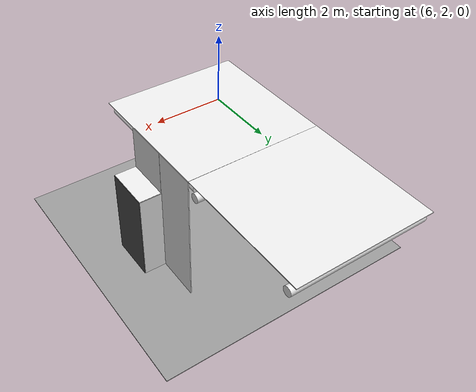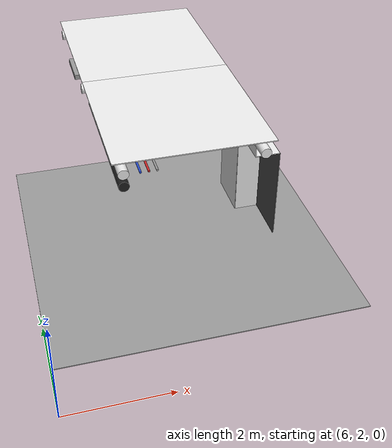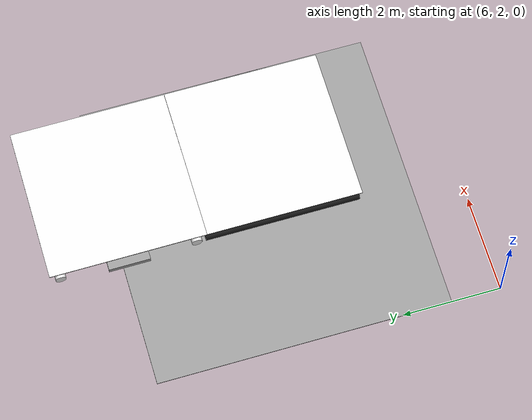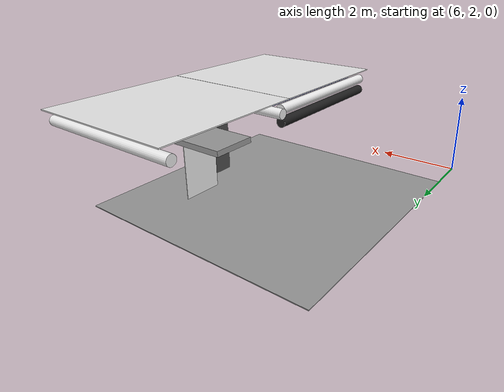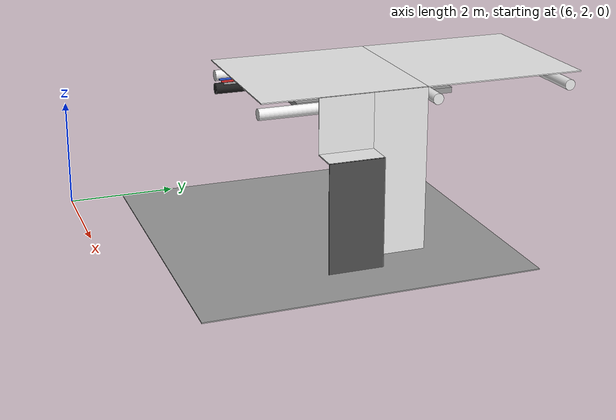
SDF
<sdf version="1.6">
 <world name="default">
  <model name="wall_top_3_3_0_2">
   <static>1</static>
   <pose>9.0 9.0 3.0 1.57 0.0 -1.57</pose>
   <link name="link">
    <collision name="collision"><geometry><box><size>3.0 0.02 3.0</size></box></geometry></collision>
    <visual name="visual">
     <material>
      <script><name>Gazebo/White</name><uri>file://media/materials/scripts/gazebo.material</uri></script>
     </material>
     <geometry><box><size>3.0 0.02 3.0</size></box></geometry>
    </visual>
   </link>
  </model>
  <model name="ceiling_1_3_3_0_2">
   <pose>8.0 9.0 2.55 0.0 0.0 -1.57</pose>
   <link name="link_1">
    <visual name="visual">
     <geometry><box><size>0.8 1 0.1</size></box></geometry>
     <material>
      <script><uri>file://media/materials/scripts/gazebo.material</uri><name>Gazebo/Grey</name></script>
     </material>
    </visual>
    <collision name="collision"><geometry><box><size>0.8 1 0.1</size></box></geometry></collision>
   </link>
   <static>1</static>
  </model>
  <model name="ceiling_1_3_3_1_2">
   <pose>9.0 8.0 2.55 0.0 0.0 0.0</pose>
   <link name="link_1">
    <visual name="visual">
     <geometry><box><size>0.8 1 0.1</size></box></geometry>
     <material>
      <script><uri>file://media/materials/scripts/gazebo.material</uri><name>Gazebo/Grey</name></script>
     </material>
    </visual>
    <collision name="collision"><geometry><box><size>0.8 1 0.1</size></box></geometry></collision>
   </link>
   <static>1</static>
  </model>
  <model name="white_pipe_left_3_3_0_2">
   <static>1</static>
   <pose>9.0 9.0 2.76 0.0 0.0 -1.57</pose>
   <link name="link_0">
    <visual name="visual">
     <pose>-1.3 0 0 1.57 0 0</pose>
     <geometry><cylinder><radius>0.1</radius><length>3.0</length></cylinder></geometry>
     <material>
      <script><uri>file://media/materials/scripts/gazebo.material</uri><name>Gazebo/White</name></script>
     </material>
    </visual>
    <collision name="collision">
     <pose>-1.3 0 0 1.57 0 0</pose>
     <geometry><cylinder><radius>0.1</radius><length>3.0</length></cylinder></geometry>
    </collision>
   </link>
  </model>
  <model name="white_pipe_right_3_3_0_2">
   <static>1</static>
   <pose>9.0 9.0 2.76 0.0 0.0 -1.57</pose>
   <link name="link_0">
    <visual name="visual">
     <pose>1.3 0 0 1.57 0 0</pose>
     <geometry><cylinder><radius>0.1</radius><length>3.0</length></cylinder></geometry>
     <material>
      <script><uri>file://media/materials/scripts/gazebo.material</uri><name>Gazebo/White</name></script>
     </material>
    </visual>
    <collision name="collision">
     <pose>1.3 0 0 1.57 0 0</pose>
     <geometry><cylinder><radius>0.1</radius><length>3.0</length></cylinder></geometry>
    </collision>
   </link>
  </model>
  <model name="wall_top_3_2_0_1">
   <static>1</static>
   <pose>9.0 6.0 3.0 1.57 0.0 3.14</pose>
   <link name="link">
    <collision name="collision"><geometry><box><size>3.0 0.02 3.0</size></box></geometry></collision>
    <visual name="visual">
     <material>
      <script><name>Gazebo/White</name><uri>file://media/materials/scripts/gazebo.material</uri></script>
     </material>
     <geometry><box><size>3.0 0.02 3.0</size></box></geometry>
    </visual>
   </link>
  </model>
  <model name="ceiling_1_3_2_0_1">
   <pose>9.0 6.0 2.55 0.0 0.0 3.14</pose>
   <link name="link_1">
    <visual name="visual">
     <geometry><box><size>0.8 1 0.1</size></box></geometry>
     <material>
      <script><uri>file://media/materials/scripts/gazebo.material</uri><name>Gazebo/Grey</name></script>
     </material>
    </visual>
    <collision name="collision"><geometry><box><size>0.8 1 0.1</size></box></geometry></collision>
   </link>
   <static>1</static>
  </model>
  <model name="ceiling_1_3_2_1_1">
   <pose>9.0 7.0 2.55 0.0 0.0 3.14</pose>
   <link name="link_1">
    <visual name="visual">
     <geometry><box><size>0.8 1 0.1</size></box></geometry>
     <material>
      <script><uri>file://media/materials/scripts/gazebo.material</uri><name>Gazebo/Grey</name></script>
     </material>
    </visual>
    <collision name="collision"><geometry><box><size>0.8 1 0.1</size></box></geometry></collision>
   </link>
   <static>1</static>
  </model>
  <model name="white_pipe_left_3_2_0_1">
   <static>1</static>
   <pose>9.0 6.0 2.76 0.0 0.0 3.14</pose>
   <link name="link_0">
    <visual name="visual">
     <pose>-1.3 0 0 1.57 0 0</pose>
     <geometry><cylinder><radius>0.1</radius><length>3.0</length></cylinder></geometry>
     <material>
      <script><uri>file://media/materials/scripts/gazebo.material</uri><name>Gazebo/White</name></script>
     </material>
    </visual>
    <collision name="collision">
     <pose>-1.3 0 0 1.57 0 0</pose>
     <geometry><cylinder><radius>0.1</radius><length>3.0</length></cylinder></geometry>
    </collision>
   </link>
  </model>
  <model name="white_pipe_right_3_2_0_1">
   <static>1</static>
   <pose>9.0 6.0 2.76 0.0 0.0 3.14</pose>
   <link name="link_0">
    <visual name="visual">
     <pose>1.3 0 0 1.57 0 0</pose>
     <geometry><cylinder><radius>0.1</radius><length>3.0</length></cylinder></geometry>
     <material>
      <script><uri>file://media/materials/scripts/gazebo.material</uri><name>Gazebo/White</name></script>
     </material>
    </visual>
    <collision name="collision">
     <pose>1.3 0 0 1.57 0 0</pose>
     <geometry><cylinder><radius>0.1</radius><length>3.0</length></cylinder></geometry>
    </collision>
   </link>
  </model>
  <model name="black_pipe_right_3_2_0_1">
   <static>1</static>
   <pose>9.0 6.0 2.76 0.0 0.0 3.14</pose>
   <link name="link_0">
    <visual name="visual">
     <pose>1.3 0 -0.25 1.57 0 0</pose>
     <geometry><cylinder><radius>0.1</radius><length>3.0</length></cylinder></geometry>
     <material>
      <script><uri>file://media/materials/scripts/gazebo.material</uri><name>Gazebo/Black</name></script>
     </material>
    </visual>
    <collision name="collision">
     <pose>1.3 0 -0.25 1.57 0 0</pose>
     <geometry><cylinder><radius>0.1</radius><length>3.0</length></cylinder></geometry>
    </collision>
   </link>
  </model>
  <model name="grey_pipe_right_3_2_0_1">
   <static>1</static>
   <pose>9.0 6.0 2.76 0.0 0.0 3.14</pose>
   <link name="link_0">
    <visual name="visual">
     <pose>0.7 0 0 1.57 0 0</pose>
     <geometry><cylinder><radius>0.02</radius><length>3.0</length></cylinder></geometry>
     <material>
      <script><uri>file://media/materials/scripts/gazebo.material</uri><name>Gazebo/Grey</name></script>
     </material>
    </visual>
    <collision name="collision">
     <pose>0.7 0 0 1.57 0 0</pose>
     <geometry><cylinder><radius>0.02</radius><length>3.0</length></cylinder></geometry>
    </collision>
   </link>
  </model>
  <model name="red_pipe_right_3_2_0_1">
   <static>1</static>
   <pose>9.0 6.0 2.76 0.0 0.0 3.14</pose>
   <link name="link_0">
    <visual name="visual">
     <pose>0.85 0 0 1.57 0 0</pose>
     <geometry><cylinder><radius>0.02</radius><length>3.0</length></cylinder></geometry>
     <material>
      <script><uri>file://media/materials/scripts/gazebo.material</uri><name>Gazebo/Red</name></script>
     </material>
    </visual>
    <collision name="collision">
     <pose>0.85 0 0 1.57 0 0</pose>
     <geometry><cylinder><radius>0.02</radius><length>3.0</length></cylinder></geometry>
    </collision>
   </link>
  </model>
  <model name="blue_pipe_right_3_2_0_1">
   <static>1</static>
   <pose>9.0 6.0 2.76 0.0 0.0 3.14</pose>
   <link name="link_0">
    <visual name="visual">
     <pose>1 0 0 1.57 0 0</pose>
     <geometry><cylinder><radius>0.02</radius><length>3.0</length></cylinder></geometry>
     <material>
      <script><uri>file://media/materials/scripts/gazebo.material</uri><name>Gazebo/Blue</name></script>
     </material>
    </visual>
    <collision name="collision">
     <pose>1 0 0 1.57 0 0</pose>
     <geometry><cylinder><radius>0.02</radius><length>3.0</length></cylinder></geometry>
    </collision>
   </link>
  </model>
  <model name="wall_left_front_right_3_2_0_1">
   <static>1</static>
   <pose>10.5 7.0 1.5 0.0 0.0 4.71</pose>
   <link name="link">
    <collision name="collision"><geometry><box><size>1.0 0.02 3.0</size></box></geometry></collision>
    <visual name="visual">
     <material>
      <script><name>Gazebo/White</name><uri>file://media/materials/scripts/gazebo.material</uri></script>
     </material>
     <geometry><box><size>1.0 0.02 3.0</size></box></geometry>
    </visual>
   </link>
  </model>
  <model name="wall_left_front_up_3_2_0_1">
   <static>1</static>
   <pose>10.5 6.0 2.5 0.0 0.0 4.71</pose>
   <link name="link">
    <collision name="collision"><geometry><box><size>1.0 0.02 1.0</size></box></geometry></collision>
    <visual name="visual">
     <material>
      <script><name>Gazebo/White</name><uri>file://media/materials/scripts/gazebo.material</uri></script>
     </material>
     <geometry><box><size>1.0 0.02 1.0</size></box></geometry>
    </visual>
   </link>
  </model>
  <model name="wall_left_inside_back_3_2_0_1">
   <static>1</static>
   <pose>11.0 6.0 1.0 0.0 0.0 4.71</pose>
   <link name="link">
    <collision name="collision"><geometry><box><size>1 0.02 2</size></box></geometry></collision>
    <visual name="visual">
     <material>
      <script><name>Gazebo/DarkGrey</name><uri>file://media/materials/scripts/gazebo.material</uri></script>
     </material>
     <geometry><box><size>1 0.02 2</size></box></geometry>
    </visual>
   </link>
  </model>
  <model name="wall_left_inside_right_3_2_0_1">
   <static>1</static>
   <pose>10.75 6.5 1.0 0.0 0.0 3.14</pose>
   <link name="link">
    <collision name="collision"><geometry><box><size>0.5 0.02 2</size></box></geometry></collision>
    <visual name="visual">
     <material>
      <script><name>Gazebo/White</name><uri>file://media/materials/scripts/gazebo.material</uri></script>
     </material>
     <geometry><box><size>0.5 0.02 2</size></box></geometry>
    </visual>
   </link>
  </model>
  <model name="wall_left_inside_top_3_2_0_1">
   <static>1</static>
   <pose>10.75 6.0 2.0 1.57 0.0 4.71</pose>
   <link name="link">
    <collision name="collision"><geometry><box><size>1 0.02 0.5</size></box></geometry></collision>
    <visual name="visual">
     <material>
      <script><name>Gazebo/White</name><uri>file://media/materials/scripts/gazebo.material</uri></script>
     </material>
     <geometry><box><size>1 0.02 0.5</size></box></geometry>
    </visual>
   </link>
  </model>
  <model name="wall_bottom_3_2_0_1">
   <static>1</static>
   <pose>9.0 6.0 0.0 0.0 0.0 3.14</pose>
   <link name="link">
    <collision name="collision"><geometry><box><size>6.0 6.0 0.02</size></box></geometry></collision>
    <visual name="visual">
     <material>
      <script><name>Gazebo/Grey</name><uri>file://media/materials/scripts/gazebo.material</uri></script>
     </material>
     <geometry><box><size>6.0 6.0 0.02</size></box></geometry>
    </visual>
   </link>
  </model>
 </world>
</sdf>
